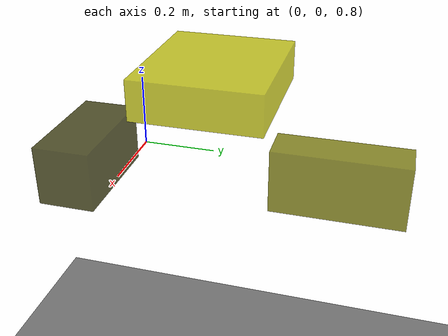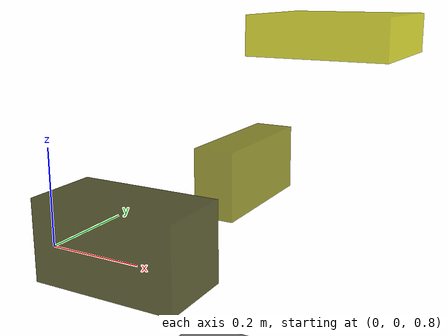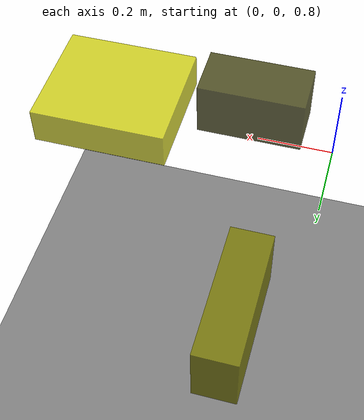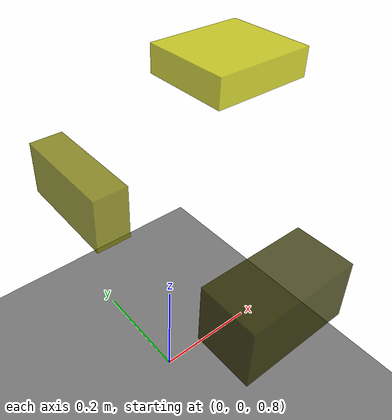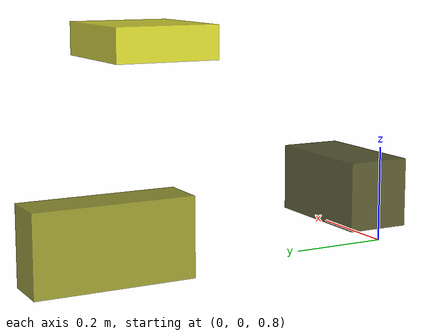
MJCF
<?xml version="1.0"?>
<mujoco model="obstacle_scene">
  <compiler angle="radian" coordinate="local"/>
  <option timestep="0.001" gravity="0 0 -9.81"/>

  <asset>
    <material name="obstacle_mat" rgba="0.8 0.8 0.0 0.8"/>
    <material name="ground_mat" rgba="0.5 0.5 0.5 1"/>
  </asset>

  <worldbody>
    <!-- Ground plane -->
    <geom name="ground" type="plane" size="3 3 0.1" material="ground_mat"/>

    <!-- Obstacles -->
    <body name="obstacle_0" pos="0.226007 -0.060988 0.874997">
      <geom name="obs_0" type="box" size="0.141172 0.070987 0.076106" rgba="0.2 0.2 0.0 0.8"/>
    </body>
    <body name="obstacle_1" pos="0.129576 0.566636 0.835277">
      <geom name="obs_1" type="box" size="0.051930 0.170301 0.085163" rgba="0.5 0.5 0.0 0.8"/>
    </body>
    <body name="obstacle_2" pos="0.448509 0.342801 1.207590">
      <geom name="obs_2" type="box" size="0.139604 0.123035 0.039269" rgba="0.8 0.8 0.0 0.8"/>
    </body>
  </worldbody>
</mujoco>
